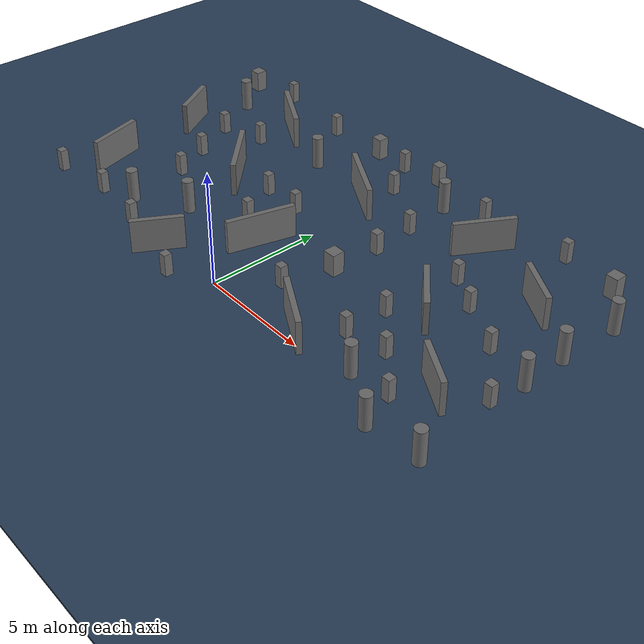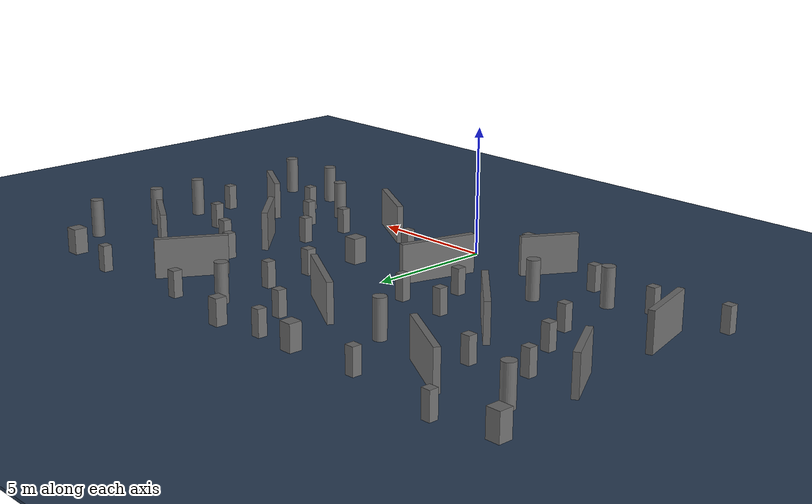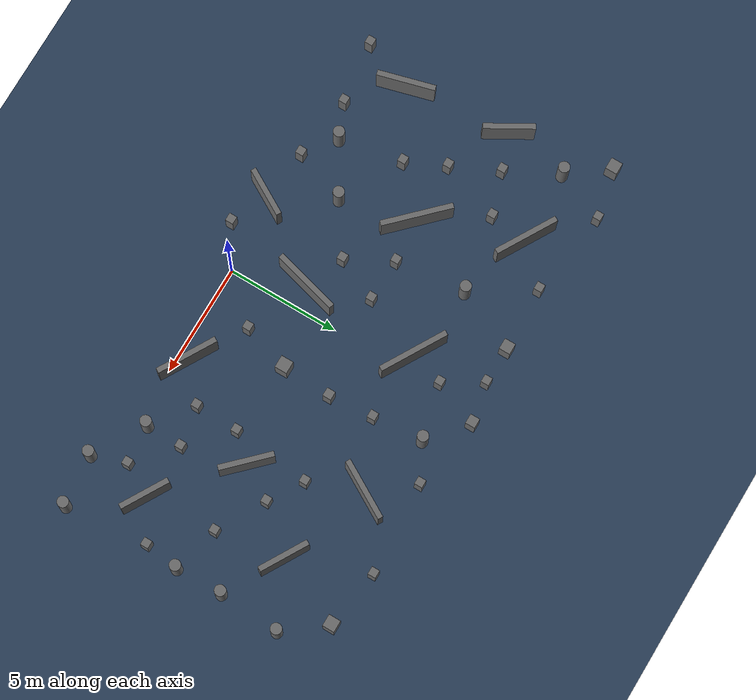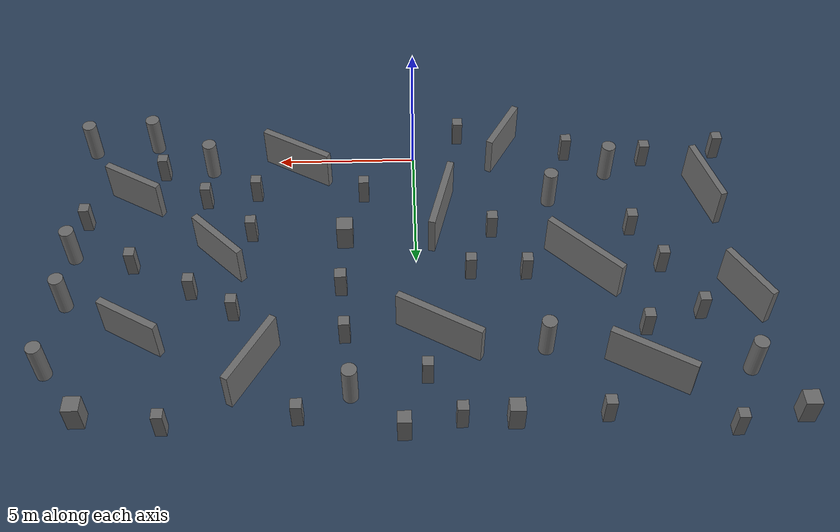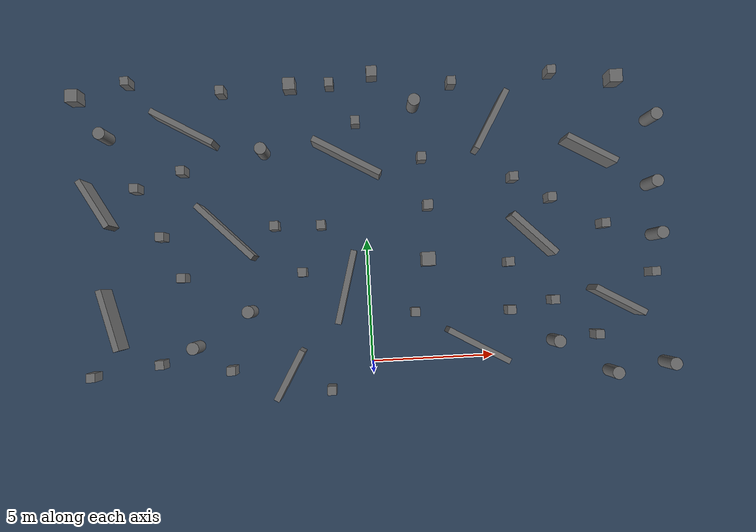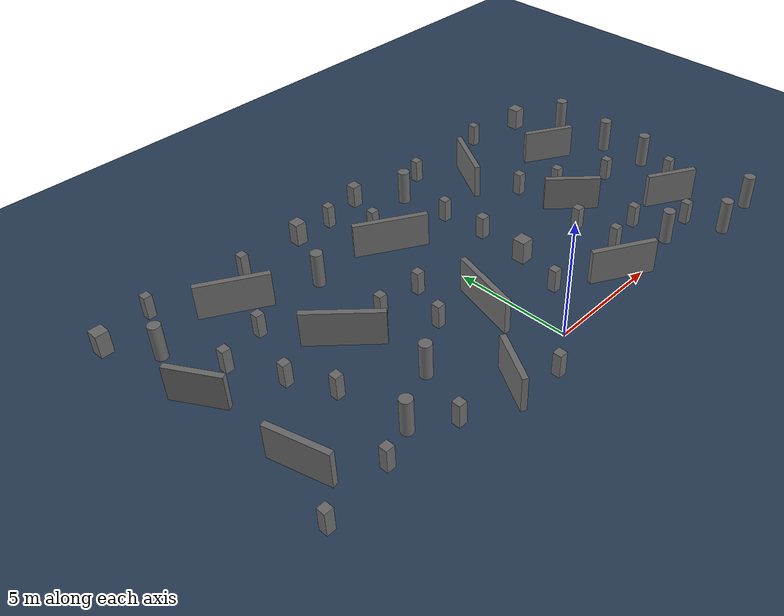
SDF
<sdf version="1.6">
 <world name="ground">
  <include><uri>model://sun</uri></include>
  <model name="ground_arena">
   <static>true</static>
   <link name="floor">
    <pose>0 0 -0.05 0 0 0</pose>
    <inertial><mass>1</mass></inertial>
    <collision name="collision"><geometry><box><size>100 100 0.1</size></box></geometry></collision>
    <visual name="visual">
     <geometry><box><size>100 100 0.1</size></box></geometry>
     <material><ambient>0.16 0.24 0.34 1</ambient><diffuse>0.16 0.24 0.34 1</diffuse></material>
    </visual>
   </link>
   <link name="maze_wall_02">
    <pose>-0.934785 3.088702 0.750000 0 0 1.308997</pose>
    <inertial><mass>1</mass></inertial>
    <collision name="collision">
     <geometry><box><size>3.020000 0.240000 1.500000</size></box></geometry>
    </collision>
    <visual name="visual">
     <geometry><box><size>3.020000 0.240000 1.500000</size></box></geometry>
     <material>
      <ambient>0.42 0.42 0.42 1</ambient>
      <diffuse>0.42 0.42 0.42 1</diffuse>
      <specular>0.15 0.15 0.15 1</specular>
     </material>
    </visual>
   </link>
   <link name="maze_wall_04">
    <pose>9.322397 8.192463 0.750000 0 0 2.617994</pose>
    <inertial><mass>1</mass></inertial>
    <collision name="collision">
     <geometry><box><size>2.270000 0.240000 1.500000</size></box></geometry>
    </collision>
    <visual name="visual">
     <geometry><box><size>2.270000 0.240000 1.500000</size></box></geometry>
     <material>
      <ambient>0.42 0.42 0.42 1</ambient>
      <diffuse>0.42 0.42 0.42 1</diffuse>
      <specular>0.15 0.15 0.15 1</specular>
     </material>
    </visual>
   </link>
   <link name="maze_wall_05">
    <pose>-0.665660 8.395972 0.750000 0 0 2.617994</pose>
    <inertial><mass>1</mass></inertial>
    <collision name="collision">
     <geometry><box><size>3.120000 0.240000 1.500000</size></box></geometry>
    </collision>
    <visual name="visual">
     <geometry><box><size>3.120000 0.240000 1.500000</size></box></geometry>
     <material>
      <ambient>0.42 0.42 0.42 1</ambient>
      <diffuse>0.42 0.42 0.42 1</diffuse>
      <specular>0.15 0.15 0.15 1</specular>
     </material>
    </visual>
   </link>
   <link name="maze_wall_06">
    <pose>-3.350257 -0.314220 0.750000 0 0 1.047198</pose>
    <inertial><mass>1</mass></inertial>
    <collision name="collision">
     <geometry><box><size>2.220000 0.240000 1.500000</size></box></geometry>
    </collision>
    <visual name="visual">
     <geometry><box><size>2.220000 0.240000 1.500000</size></box></geometry>
     <material>
      <ambient>0.42 0.42 0.42 1</ambient>
      <diffuse>0.42 0.42 0.42 1</diffuse>
      <specular>0.15 0.15 0.15 1</specular>
     </material>
    </visual>
   </link>
   <link name="maze_wall_07">
    <pose>-5.725737 5.576264 0.750000 0 0 2.356196</pose>
    <inertial><mass>1</mass></inertial>
    <collision name="collision">
     <geometry><box><size>3.150000 0.240000 1.500000</size></box></geometry>
    </collision>
    <visual name="visual">
     <geometry><box><size>3.150000 0.240000 1.500000</size></box></geometry>
     <material>
      <ambient>0.42 0.42 0.42 1</ambient>
      <diffuse>0.42 0.42 0.42 1</diffuse>
      <specular>0.15 0.15 0.15 1</specular>
     </material>
    </visual>
   </link>
   <link name="maze_wall_08">
    <pose>4.268135 0.488885 0.750000 0 0 2.617994</pose>
    <inertial><mass>1</mass></inertial>
    <collision name="collision">
     <geometry><box><size>2.740000 0.240000 1.500000</size></box></geometry>
    </collision>
    <visual name="visual">
     <geometry><box><size>2.740000 0.240000 1.500000</size></box></geometry>
     <material>
      <ambient>0.42 0.42 0.42 1</ambient>
      <diffuse>0.42 0.42 0.42 1</diffuse>
      <specular>0.15 0.15 0.15 1</specular>
     </material>
    </visual>
   </link>
   <link name="maze_wall_09">
    <pose>5.321534 9.598098 0.750000 0 0 1.047198</pose>
    <inertial><mass>1</mass></inertial>
    <collision name="collision">
     <geometry><box><size>2.710000 0.240000 1.500000</size></box></geometry>
    </collision>
    <visual name="visual">
     <geometry><box><size>2.710000 0.240000 1.500000</size></box></geometry>
     <material>
      <ambient>0.42 0.42 0.42 1</ambient>
      <diffuse>0.42 0.42 0.42 1</diffuse>
      <specular>0.15 0.15 0.15 1</specular>
     </material>
    </visual>
   </link>
   <link name="maze_wall_12">
    <pose>-10.996733 6.957504 0.750000 0 0 2.094395</pose>
    <inertial><mass>1</mass></inertial>
    <collision name="collision">
     <geometry><box><size>2.240000 0.240000 1.500000</size></box></geometry>
    </collision>
    <visual name="visual">
     <geometry><box><size>2.240000 0.240000 1.500000</size></box></geometry>
     <material>
      <ambient>0.42 0.42 0.42 1</ambient>
      <diffuse>0.42 0.42 0.42 1</diffuse>
      <specular>0.15 0.15 0.15 1</specular>
     </material>
    </visual>
   </link>
   <link name="maze_wall_13">
    <pose>6.777890 4.871578 0.750000 0 0 2.356196</pose>
    <inertial><mass>1</mass></inertial>
    <collision name="collision">
     <geometry><box><size>2.380000 0.240000 1.500000</size></box></geometry>
    </collision>
    <visual name="visual">
     <geometry><box><size>2.380000 0.240000 1.500000</size></box></geometry>
     <material>
      <ambient>0.42 0.42 0.42 1</ambient>
      <diffuse>0.42 0.42 0.42 1</diffuse>
      <specular>0.15 0.15 0.15 1</specular>
     </material>
    </visual>
   </link>
   <link name="maze_wall_16">
    <pose>10.045567 2.013541 0.750000 0 0 2.617994</pose>
    <inertial><mass>1</mass></inertial>
    <collision name="collision">
     <geometry><box><size>2.250000 0.240000 1.500000</size></box></geometry>
    </collision>
    <visual name="visual">
     <geometry><box><size>2.250000 0.240000 1.500000</size></box></geometry>
     <material>
      <ambient>0.42 0.42 0.42 1</ambient>
      <diffuse>0.42 0.42 0.42 1</diffuse>
      <specular>0.15 0.15 0.15 1</specular>
     </material>
    </visual>
   </link>
   <link name="maze_wall_17">
    <pose>-10.518603 2.233506 0.750000 0 0 1.832596</pose>
    <inertial><mass>1</mass></inertial>
    <collision name="collision">
     <geometry><box><size>2.560000 0.240000 1.500000</size></box></geometry>
    </collision>
    <visual name="visual">
     <geometry><box><size>2.560000 0.240000 1.500000</size></box></geometry>
     <material>
      <ambient>0.42 0.42 0.42 1</ambient>
      <diffuse>0.42 0.42 0.42 1</diffuse>
      <specular>0.15 0.15 0.15 1</specular>
     </material>
    </visual>
   </link>
   <link name="maze_wall_20">
    <pose>-7.292603 9.918312 0.750000 0 0 2.617994</pose>
    <inertial><mass>1</mass></inertial>
    <collision name="collision">
     <geometry><box><size>2.890000 0.240000 1.500000</size></box></geometry>
    </collision>
    <visual name="visual">
     <geometry><box><size>2.890000 0.240000 1.500000</size></box></geometry>
     <material>
      <ambient>0.42 0.42 0.42 1</ambient>
      <diffuse>0.42 0.42 0.42 1</diffuse>
      <specular>0.15 0.15 0.15 1</specular>
     </material>
    </visual>
   </link>
   <link name="random_cylinder_02">
    <pose>-7.146008 0.953489 0.750000 0 0 0</pose>
    <inertial><mass>1</mass></inertial>
    <collision name="collision">
     <geometry><cylinder><radius>0.250000</radius><length>1.500000</length></cylinder></geometry>
    </collision>
    <visual name="visual">
     <geometry><cylinder><radius>0.250000</radius><length>1.500000</length></cylinder></geometry>
     <material>
      <ambient>0.42 0.42 0.42 1</ambient>
      <diffuse>0.42 0.42 0.42 1</diffuse>
      <specular>0.15 0.15 0.15 1</specular>
     </material>
    </visual>
   </link>
   <link name="random_cylinder_07">
    <pose>12.034153 -0.632277 0.750000 0 0 0</pose>
    <inertial><mass>1</mass></inertial>
    <collision name="collision">
     <geometry><cylinder><radius>0.250000</radius><length>1.500000</length></cylinder></geometry>
    </collision>
    <visual name="visual">
     <geometry><cylinder><radius>0.250000</radius><length>1.500000</length></cylinder></geometry>
     <material>
      <ambient>0.42 0.42 0.42 1</ambient>
      <diffuse>0.42 0.42 0.42 1</diffuse>
      <specular>0.15 0.15 0.15 1</specular>
     </material>
    </visual>
   </link>
   <link name="random_cylinder_09">
    <pose>-4.124157 8.861503 0.750000 0 0 0</pose>
    <inertial><mass>1</mass></inertial>
    <collision name="collision">
     <geometry><cylinder><radius>0.250000</radius><length>1.500000</length></cylinder></geometry>
    </collision>
    <visual name="visual">
     <geometry><cylinder><radius>0.250000</radius><length>1.500000</length></cylinder></geometry>
     <material>
      <ambient>0.42 0.42 0.42 1</ambient>
      <diffuse>0.42 0.42 0.42 1</diffuse>
      <specular>0.15 0.15 0.15 1</specular>
     </material>
    </visual>
   </link>
   <link name="random_cylinder_10">
    <pose>2.205099 10.537002 0.750000 0 0 0</pose>
    <inertial><mass>1</mass></inertial>
    <collision name="collision">
     <geometry><cylinder><radius>0.250000</radius><length>1.500000</length></cylinder></geometry>
    </collision>
    <visual name="visual">
     <geometry><cylinder><radius>0.250000</radius><length>1.500000</length></cylinder></geometry>
     <material>
      <ambient>0.42 0.42 0.42 1</ambient>
      <diffuse>0.42 0.42 0.42 1</diffuse>
      <specular>0.15 0.15 0.15 1</specular>
     </material>
    </visual>
   </link>
   <link name="random_cylinder_13">
    <pose>11.898950 4.629410 0.750000 0 0 0</pose>
    <inertial><mass>1</mass></inertial>
    <collision name="collision">
     <geometry><cylinder><radius>0.250000</radius><length>1.500000</length></cylinder></geometry>
    </collision>
    <visual name="visual">
     <geometry><cylinder><radius>0.250000</radius><length>1.500000</length></cylinder></geometry>
     <material>
      <ambient>0.42 0.42 0.42 1</ambient>
      <diffuse>0.42 0.42 0.42 1</diffuse>
      <specular>0.15 0.15 0.15 1</specular>
     </material>
    </visual>
   </link>
   <link name="random_cylinder_14">
    <pose>-4.891554 2.287162 0.750000 0 0 0</pose>
    <inertial><mass>1</mass></inertial>
    <collision name="collision">
     <geometry><cylinder><radius>0.250000</radius><length>1.500000</length></cylinder></geometry>
    </collision>
    <visual name="visual">
     <geometry><cylinder><radius>0.250000</radius><length>1.500000</length></cylinder></geometry>
     <material>
      <ambient>0.42 0.42 0.42 1</ambient>
      <diffuse>0.42 0.42 0.42 1</diffuse>
      <specular>0.15 0.15 0.15 1</specular>
     </material>
    </visual>
   </link>
   <link name="random_cylinder_16">
    <pose>12.006046 9.462281 0.750000 0 0 0</pose>
    <inertial><mass>1</mass></inertial>
    <collision name="collision">
     <geometry><cylinder><radius>0.250000</radius><length>1.500000</length></cylinder></geometry>
    </collision>
    <visual name="visual">
     <geometry><cylinder><radius>0.250000</radius><length>1.500000</length></cylinder></geometry>
     <material>
      <ambient>0.42 0.42 0.42 1</ambient>
      <diffuse>0.42 0.42 0.42 1</diffuse>
      <specular>0.15 0.15 0.15 1</specular>
     </material>
    </visual>
   </link>
   <link name="random_cylinder_17">
    <pose>11.843537 6.728521 0.750000 0 0 0</pose>
    <inertial><mass>1</mass></inertial>
    <collision name="collision">
     <geometry><cylinder><radius>0.250000</radius><length>1.500000</length></cylinder></geometry>
    </collision>
    <visual name="visual">
     <geometry><cylinder><radius>0.250000</radius><length>1.500000</length></cylinder></geometry>
     <material>
      <ambient>0.42 0.42 0.42 1</ambient>
      <diffuse>0.42 0.42 0.42 1</diffuse>
      <specular>0.15 0.15 0.15 1</specular>
     </material>
    </visual>
   </link>
   <link name="random_cylinder_18">
    <pose>-10.630413 9.815708 0.750000 0 0 0</pose>
    <inertial><mass>1</mass></inertial>
    <collision name="collision">
     <geometry><cylinder><radius>0.250000</radius><length>1.500000</length></cylinder></geometry>
    </collision>
    <visual name="visual">
     <geometry><cylinder><radius>0.250000</radius><length>1.500000</length></cylinder></geometry>
     <material>
      <ambient>0.42 0.42 0.42 1</ambient>
      <diffuse>0.42 0.42 0.42 1</diffuse>
      <specular>0.15 0.15 0.15 1</specular>
     </material>
    </visual>
   </link>
   <link name="random_cylinder_19">
    <pose>9.723992 -0.872083 0.750000 0 0 0</pose>
    <inertial><mass>1</mass></inertial>
    <collision name="collision">
     <geometry><cylinder><radius>0.250000</radius><length>1.500000</length></cylinder></geometry>
    </collision>
    <visual name="visual">
     <geometry><cylinder><radius>0.250000</radius><length>1.500000</length></cylinder></geometry>
     <material>
      <ambient>0.42 0.42 0.42 1</ambient>
      <diffuse>0.42 0.42 0.42 1</diffuse>
      <specular>0.15 0.15 0.15 1</specular>
     </material>
    </visual>
   </link>
   <link name="random_cylinder_20">
    <pose>7.474501 0.492021 0.750000 0 0 0</pose>
    <inertial><mass>1</mass></inertial>
    <collision name="collision">
     <geometry><cylinder><radius>0.250000</radius><length>1.500000</length></cylinder></geometry>
    </collision>
    <visual name="visual">
     <geometry><cylinder><radius>0.250000</radius><length>1.500000</length></cylinder></geometry>
     <material>
      <ambient>0.42 0.42 0.42 1</ambient>
      <diffuse>0.42 0.42 0.42 1</diffuse>
      <specular>0.15 0.15 0.15 1</specular>
     </material>
    </visual>
   </link>
   <link name="random_platform_02">
    <pose>2.581997 6.292434 0.500000 0 0 0.000000</pose>
    <inertial><mass>1</mass></inertial>
    <collision name="collision">
     <geometry><box><size>0.390000 0.390000 1.000000</size></box></geometry>
    </collision>
    <visual name="visual">
     <geometry><box><size>0.390000 0.390000 1.000000</size></box></geometry>
     <material>
      <ambient>0.42 0.42 0.42 1</ambient>
      <diffuse>0.42 0.42 0.42 1</diffuse>
      <specular>0.15 0.15 0.15 1</specular>
     </material>
    </visual>
   </link>
   <link name="random_platform_04">
    <pose>10.626967 11.227550 0.500000 0 0 0.000000</pose>
    <inertial><mass>1</mass></inertial>
    <collision name="collision">
     <geometry><box><size>0.540000 0.540000 1.000000</size></box></geometry>
    </collision>
    <visual name="visual">
     <geometry><box><size>0.540000 0.540000 1.000000</size></box></geometry>
     <material>
      <ambient>0.42 0.42 0.42 1</ambient>
      <diffuse>0.42 0.42 0.42 1</diffuse>
      <specular>0.15 0.15 0.15 1</specular>
     </material>
    </visual>
   </link>
   <link name="random_platform_08">
    <pose>-2.902291 11.585993 0.500000 0 0 0.000000</pose>
    <inertial><mass>1</mass></inertial>
    <collision name="collision">
     <geometry><box><size>0.500000 0.500000 1.000000</size></box></geometry>
    </collision>
    <visual name="visual">
     <geometry><box><size>0.500000 0.500000 1.000000</size></box></geometry>
     <material>
      <ambient>0.42 0.42 0.42 1</ambient>
      <diffuse>0.42 0.42 0.42 1</diffuse>
      <specular>0.15 0.15 0.15 1</specular>
     </material>
    </visual>
   </link>
   <link name="random_platform_10">
    <pose>-9.681246 12.047691 0.500000 0 0 0.000000</pose>
    <inertial><mass>1</mass></inertial>
    <collision name="collision">
     <geometry><box><size>0.350000 0.350000 1.000000</size></box></geometry>
    </collision>
    <visual name="visual">
     <geometry><box><size>0.350000 0.350000 1.000000</size></box></geometry>
     <material>
      <ambient>0.42 0.42 0.42 1</ambient>
      <diffuse>0.42 0.42 0.42 1</diffuse>
      <specular>0.15 0.15 0.15 1</specular>
     </material>
    </visual>
   </link>
   <link name="random_platform_11">
    <pose>9.781414 5.173394 0.500000 0 0 0.000000</pose>
    <inertial><mass>1</mass></inertial>
    <collision name="collision">
     <geometry><box><size>0.360000 0.360000 1.000000</size></box></geometry>
    </collision>
    <visual name="visual">
     <geometry><box><size>0.360000 0.360000 1.000000</size></box></geometry>
     <material>
      <ambient>0.42 0.42 0.42 1</ambient>
      <diffuse>0.42 0.42 0.42 1</diffuse>
      <specular>0.15 0.15 0.15 1</specular>
     </material>
    </visual>
   </link>
   <link name="random_platform_15">
    <pose>-11.889247 11.546915 0.500000 0 0 0.000000</pose>
    <inertial><mass>1</mass></inertial>
    <collision name="collision">
     <geometry><box><size>0.530000 0.530000 1.000000</size></box></geometry>
    </collision>
    <visual name="visual">
     <geometry><box><size>0.530000 0.530000 1.000000</size></box></geometry>
     <material>
      <ambient>0.42 0.42 0.42 1</ambient>
      <diffuse>0.42 0.42 0.42 1</diffuse>
      <specular>0.15 0.15 0.15 1</specular>
     </material>
    </visual>
   </link>
   <link name="random_platform_17">
    <pose>2.476901 4.069141 0.500000 0 0 0.000000</pose>
    <inertial><mass>1</mass></inertial>
    <collision name="collision">
     <geometry><box><size>0.560000 0.560000 1.000000</size></box></geometry>
    </collision>
    <visual name="visual">
     <geometry><box><size>0.560000 0.560000 1.000000</size></box></geometry>
     <material>
      <ambient>0.42 0.42 0.42 1</ambient>
      <diffuse>0.42 0.42 0.42 1</diffuse>
      <specular>0.15 0.15 0.15 1</specular>
     </material>
    </visual>
   </link>
   <link name="random_platform_19">
    <pose>0.541180 11.936301 0.500000 0 0 0.000000</pose>
    <inertial><mass>1</mass></inertial>
    <collision name="collision">
     <geometry><box><size>0.440000 0.440000 1.000000</size></box></geometry>
    </collision>
    <visual name="visual">
     <geometry><box><size>0.440000 0.440000 1.000000</size></box></geometry>
     <material>
      <ambient>0.42 0.42 0.42 1</ambient>
      <diffuse>0.42 0.42 0.42 1</diffuse>
      <specular>0.15 0.15 0.15 1</specular>
     </material>
    </visual>
   </link>
   <link name="random_platform_20">
    <pose>7.978510 11.633445 0.500000 0 0 0.000000</pose>
    <inertial><mass>1</mass></inertial>
    <collision name="collision">
     <geometry><box><size>0.360000 0.360000 1.000000</size></box></geometry>
    </collision>
    <visual name="visual">
     <geometry><box><size>0.360000 0.360000 1.000000</size></box></geometry>
     <material>
      <ambient>0.42 0.42 0.42 1</ambient>
      <diffuse>0.42 0.42 0.42 1</diffuse>
      <specular>0.15 0.15 0.15 1</specular>
     </material>
    </visual>
   </link>
   <link name="added_platform_001">
    <pose>-7.625527 3.799897 0.5 0 0 0</pose>
    <inertial><mass>1</mass></inertial>
    <collision name="collision">
     <geometry><box><size>0.360000 0.360000 1.000000</size></box></geometry>
    </collision>
    <visual name="visual">
     <geometry><box><size>0.360000 0.360000 1.000000</size></box></geometry>
     <material>
      <ambient>0.42 0.42 0.42 1</ambient>
      <diffuse>0.42 0.42 0.42 1</diffuse>
      <specular>0.15 0.15 0.15 1</specular>
     </material>
    </visual>
   </link>
   <link name="added_platform_004">
    <pose>-9.431943 7.577299 0.5 0 0 0</pose>
    <inertial><mass>1</mass></inertial>
    <collision name="collision">
     <geometry><box><size>0.360000 0.360000 1.000000</size></box></geometry>
    </collision>
    <visual name="visual">
     <geometry><box><size>0.360000 0.360000 1.000000</size></box></geometry>
     <material>
      <ambient>0.42 0.42 0.42 1</ambient>
      <diffuse>0.42 0.42 0.42 1</diffuse>
      <specular>0.15 0.15 0.15 1</specular>
     </material>
    </visual>
   </link>
   <link name="added_platform_005">
    <pose>3.821540 11.378197 0.5 0 0 0</pose>
    <inertial><mass>1</mass></inertial>
    <collision name="collision">
     <geometry><box><size>0.360000 0.360000 1.000000</size></box></geometry>
    </collision>
    <visual name="visual">
     <geometry><box><size>0.360000 0.360000 1.000000</size></box></geometry>
     <material>
      <ambient>0.42 0.42 0.42 1</ambient>
      <diffuse>0.42 0.42 0.42 1</diffuse>
      <specular>0.15 0.15 0.15 1</specular>
     </material>
    </visual>
   </link>
   <link name="added_platform_006">
    <pose>5.723373 1.828048 0.5 0 0 0</pose>
    <inertial><mass>1</mass></inertial>
    <collision name="collision">
     <geometry><box><size>0.360000 0.360000 1.000000</size></box></geometry>
    </collision>
    <visual name="visual">
     <geometry><box><size>0.360000 0.360000 1.000000</size></box></geometry>
     <material>
      <ambient>0.42 0.42 0.42 1</ambient>
      <diffuse>0.42 0.42 0.42 1</diffuse>
      <specular>0.15 0.15 0.15 1</specular>
     </material>
    </visual>
   </link>
   <link name="added_platform_008">
    <pose>-1.850584 5.689187 0.5 0 0 0</pose>
    <inertial><mass>1</mass></inertial>
    <collision name="collision">
     <geometry><box><size>0.360000 0.360000 1.000000</size></box></geometry>
    </collision>
    <visual name="visual">
     <geometry><box><size>0.360000 0.360000 1.000000</size></box></geometry>
     <material>
      <ambient>0.42 0.42 0.42 1</ambient>
      <diffuse>0.42 0.42 0.42 1</diffuse>
      <specular>0.15 0.15 0.15 1</specular>
     </material>
    </visual>
   </link>
   <link name="added_platform_009">
    <pose>-5.738403 -0.055039 0.5 0 0 0</pose>
    <inertial><mass>1</mass></inertial>
    <collision name="collision">
     <geometry><box><size>0.360000 0.360000 1.000000</size></box></geometry>
    </collision>
    <visual name="visual">
     <geometry><box><size>0.360000 0.360000 1.000000</size></box></geometry>
     <material>
      <ambient>0.42 0.42 0.42 1</ambient>
      <diffuse>0.42 0.42 0.42 1</diffuse>
      <specular>0.15 0.15 0.15 1</specular>
     </material>
    </visual>
   </link>
   <link name="added_platform_012">
    <pose>1.830552 1.939831 0.5 0 0 0</pose>
    <inertial><mass>1</mass></inertial>
    <collision name="collision">
     <geometry><box><size>0.360000 0.360000 1.000000</size></box></geometry>
    </collision>
    <visual name="visual">
     <geometry><box><size>0.360000 0.360000 1.000000</size></box></geometry>
     <material>
      <ambient>0.42 0.42 0.42 1</ambient>
      <diffuse>0.42 0.42 0.42 1</diffuse>
      <specular>0.15 0.15 0.15 1</specular>
     </material>
    </visual>
   </link>
   <link name="added_platform_016">
    <pose>-11.403493 -0.035659 0.5 0 0 0</pose>
    <inertial><mass>1</mass></inertial>
    <collision name="collision">
     <geometry><box><size>0.360000 0.360000 1.000000</size></box></geometry>
    </collision>
    <visual name="visual">
     <geometry><box><size>0.360000 0.360000 1.000000</size></box></geometry>
     <material>
      <ambient>0.42 0.42 0.42 1</ambient>
      <diffuse>0.42 0.42 0.42 1</diffuse>
      <specular>0.15 0.15 0.15 1</specular>
     </material>
    </visual>
   </link>
   <link name="added_platform_024">
    <pose>-3.762570 5.746143 0.5 0 0 0</pose>
    <inertial><mass>1</mass></inertial>
    <collision name="collision">
     <geometry><box><size>0.360000 0.360000 1.000000</size></box></geometry>
    </collision>
    <visual name="visual">
     <geometry><box><size>0.360000 0.360000 1.000000</size></box></geometry>
     <material>
      <ambient>0.42 0.42 0.42 1</ambient>
      <diffuse>0.42 0.42 0.42 1</diffuse>
      <specular>0.15 0.15 0.15 1</specular>
     </material>
    </visual>
   </link>
   <link name="added_platform_025">
    <pose>5.774997 3.783645 0.5 0 0 0</pose>
    <inertial><mass>1</mass></inertial>
    <collision name="collision">
     <geometry><box><size>0.360000 0.360000 1.000000</size></box></geometry>
    </collision>
    <visual name="visual">
     <geometry><box><size>0.360000 0.360000 1.000000</size></box></geometry>
     <material>
      <ambient>0.42 0.42 0.42 1</ambient>
      <diffuse>0.42 0.42 0.42 1</diffuse>
      <specular>0.15 0.15 0.15 1</specular>
     </material>
    </visual>
   </link>
   <link name="added_platform_026">
    <pose>-5.771524 11.469407 0.5 0 0 0</pose>
    <inertial><mass>1</mass></inertial>
    <collision name="collision">
     <geometry><box><size>0.360000 0.360000 1.000000</size></box></geometry>
    </collision>
    <visual name="visual">
     <geometry><box><size>0.360000 0.360000 1.000000</size></box></geometry>
     <material>
      <ambient>0.42 0.42 0.42 1</ambient>
      <diffuse>0.42 0.42 0.42 1</diffuse>
      <specular>0.15 0.15 0.15 1</specular>
     </material>
    </visual>
   </link>
   <link name="added_platform_027">
    <pose>7.514417 2.150328 0.5 0 0 0</pose>
    <inertial><mass>1</mass></inertial>
    <collision name="collision">
     <geometry><box><size>0.360000 0.360000 1.000000</size></box></geometry>
    </collision>
    <visual name="visual">
     <geometry><box><size>0.360000 0.360000 1.000000</size></box></geometry>
     <material>
      <ambient>0.42 0.42 0.42 1</ambient>
      <diffuse>0.42 0.42 0.42 1</diffuse>
      <specular>0.15 0.15 0.15 1</specular>
     </material>
    </visual>
   </link>
   <link name="added_platform_029">
    <pose>11.680485 3.087389 0.5 0 0 0</pose>
    <inertial><mass>1</mass></inertial>
    <collision name="collision">
     <geometry><box><size>0.360000 0.360000 1.000000</size></box></geometry>
    </collision>
    <visual name="visual">
     <geometry><box><size>0.360000 0.360000 1.000000</size></box></geometry>
     <material>
      <ambient>0.42 0.42 0.42 1</ambient>
      <diffuse>0.42 0.42 0.42 1</diffuse>
      <specular>0.15 0.15 0.15 1</specular>
     </material>
    </visual>
   </link>
   <link name="added_platform_033">
    <pose>6.150855 7.278477 0.5 0 0 0</pose>
    <inertial><mass>1</mass></inertial>
    <collision name="collision">
     <geometry><box><size>0.360000 0.360000 1.000000</size></box></geometry>
    </collision>
    <visual name="visual">
     <geometry><box><size>0.360000 0.360000 1.000000</size></box></geometry>
     <material>
      <ambient>0.42 0.42 0.42 1</ambient>
      <diffuse>0.42 0.42 0.42 1</diffuse>
      <specular>0.15 0.15 0.15 1</specular>
     </material>
    </visual>
   </link>
   <link name="added_platform_034">
    <pose>9.225729 0.659842 0.5 0 0 0</pose>
    <inertial><mass>1</mass></inertial>
    <collision name="collision">
     <geometry><box><size>0.360000 0.360000 1.000000</size></box></geometry>
    </collision>
    <visual name="visual">
     <geometry><box><size>0.360000 0.360000 1.000000</size></box></geometry>
     <material>
      <ambient>0.42 0.42 0.42 1</ambient>
      <diffuse>0.42 0.42 0.42 1</diffuse>
      <specular>0.15 0.15 0.15 1</specular>
     </material>
    </visual>
   </link>
   <link name="added_platform_036">
    <pose>-1.715816 -1.039468 0.5 0 0 0</pose>
    <inertial><mass>1</mass></inertial>
    <collision name="collision">
     <geometry><box><size>0.360000 0.360000 1.000000</size></box></geometry>
    </collision>
    <visual name="visual">
     <geometry><box><size>0.360000 0.360000 1.000000</size></box></geometry>
     <material>
      <ambient>0.42 0.42 0.42 1</ambient>
      <diffuse>0.42 0.42 0.42 1</diffuse>
      <specular>0.15 0.15 0.15 1</specular>
     </material>
    </visual>
   </link>
   <link name="added_platform_038">
    <pose>7.662109 6.354776 0.5 0 0 0</pose>
    <inertial><mass>1</mass></inertial>
    <collision name="collision">
     <geometry><box><size>0.360000 0.360000 1.000000</size></box></geometry>
    </collision>
    <visual name="visual">
     <geometry><box><size>0.360000 0.360000 1.000000</size></box></geometry>
     <material>
      <ambient>0.42 0.42 0.42 1</ambient>
      <diffuse>0.42 0.42 0.42 1</diffuse>
      <specular>0.15 0.15 0.15 1</specular>
     </material>
    </visual>
   </link>
   <link name="added_platform_040">
    <pose>-8.443165 5.527225 0.5 0 0 0</pose>
    <inertial><mass>1</mass></inertial>
    <collision name="collision">
     <geometry><box><size>0.360000 0.360000 1.000000</size></box></geometry>
    </collision>
    <visual name="visual">
     <geometry><box><size>0.360000 0.360000 1.000000</size></box></geometry>
     <material>
      <ambient>0.42 0.42 0.42 1</ambient>
      <diffuse>0.42 0.42 0.42 1</diffuse>
      <specular>0.15 0.15 0.15 1</specular>
     </material>
    </visual>
   </link>
   <link name="added_platform_041">
    <pose>-0.236321 9.925462 0.5 0 0 0</pose>
    <inertial><mass>1</mass></inertial>
    <collision name="collision">
     <geometry><box><size>0.360000 0.360000 1.000000</size></box></geometry>
    </collision>
    <visual name="visual">
     <geometry><box><size>0.360000 0.360000 1.000000</size></box></geometry>
     <material>
      <ambient>0.42 0.42 0.42 1</ambient>
      <diffuse>0.42 0.42 0.42 1</diffuse>
      <specular>0.15 0.15 0.15 1</specular>
     </material>
    </visual>
   </link>
   <link name="added_platform_042">
    <pose>-2.700302 3.785255 0.5 0 0 0</pose>
    <inertial><mass>1</mass></inertial>
    <collision name="collision">
     <geometry><box><size>0.360000 0.360000 1.000000</size></box></geometry>
    </collision>
    <visual name="visual">
     <geometry><box><size>0.360000 0.360000 1.000000</size></box></geometry>
     <material>
      <ambient>0.42 0.42 0.42 1</ambient>
      <diffuse>0.42 0.42 0.42 1</diffuse>
      <specular>0.15 0.15 0.15 1</specular>
     </material>
    </visual>
   </link>
   <link name="added_platform_044">
    <pose>2.424550 8.294469 0.5 0 0 0</pose>
    <inertial><mass>1</mass></inertial>
    <collision name="collision">
     <geometry><box><size>0.360000 0.360000 1.000000</size></box></geometry>
    </collision>
    <visual name="visual">
     <geometry><box><size>0.360000 0.360000 1.000000</size></box></geometry>
     <material>
      <ambient>0.42 0.42 0.42 1</ambient>
      <diffuse>0.42 0.42 0.42 1</diffuse>
      <specular>0.15 0.15 0.15 1</specular>
     </material>
    </visual>
   </link>
   <link name="added_platform_045">
    <pose>-1.245048 11.569822 0.5 0 0 0</pose>
    <inertial><mass>1</mass></inertial>
    <collision name="collision">
     <geometry><box><size>0.360000 0.360000 1.000000</size></box></geometry>
    </collision>
    <visual name="visual">
     <geometry><box><size>0.360000 0.360000 1.000000</size></box></geometry>
     <material>
      <ambient>0.42 0.42 0.42 1</ambient>
      <diffuse>0.42 0.42 0.42 1</diffuse>
      <specular>0.15 0.15 0.15 1</specular>
     </material>
    </visual>
   </link>
   <link name="added_platform_048">
    <pose>-7.502938 8.209989 0.5 0 0 0</pose>
    <inertial><mass>1</mass></inertial>
    <collision name="collision">
     <geometry><box><size>0.360000 0.360000 1.000000</size></box></geometry>
    </collision>
    <visual name="visual">
     <geometry><box><size>0.360000 0.360000 1.000000</size></box></geometry>
     <material>
      <ambient>0.42 0.42 0.42 1</ambient>
      <diffuse>0.42 0.42 0.42 1</diffuse>
      <specular>0.15 0.15 0.15 1</specular>
     </material>
    </visual>
   </link>
   <link name="added_platform_051">
    <pose>-8.614327 0.331572 0.5 0 0 0</pose>
    <inertial><mass>1</mass></inertial>
    <collision name="collision">
     <geometry><box><size>0.360000 0.360000 1.000000</size></box></geometry>
    </collision>
    <visual name="visual">
     <geometry><box><size>0.360000 0.360000 1.000000</size></box></geometry>
     <material>
      <ambient>0.42 0.42 0.42 1</ambient>
      <diffuse>0.42 0.42 0.42 1</diffuse>
      <specular>0.15 0.15 0.15 1</specular>
     </material>
    </visual>
   </link>
  </model>
 </world>
</sdf>
